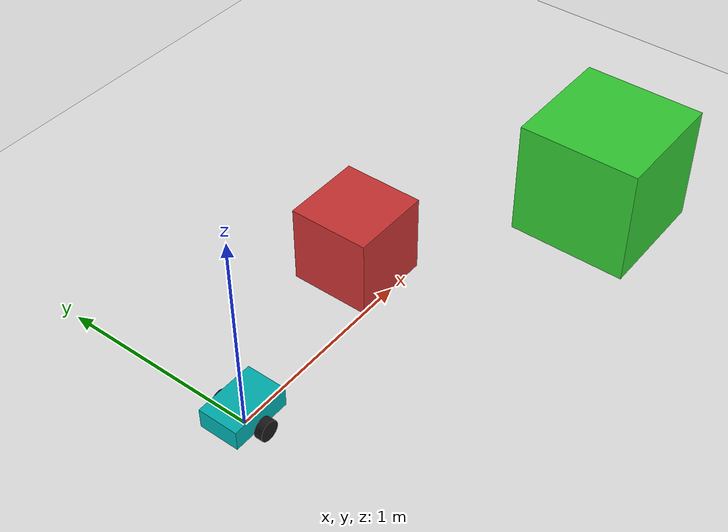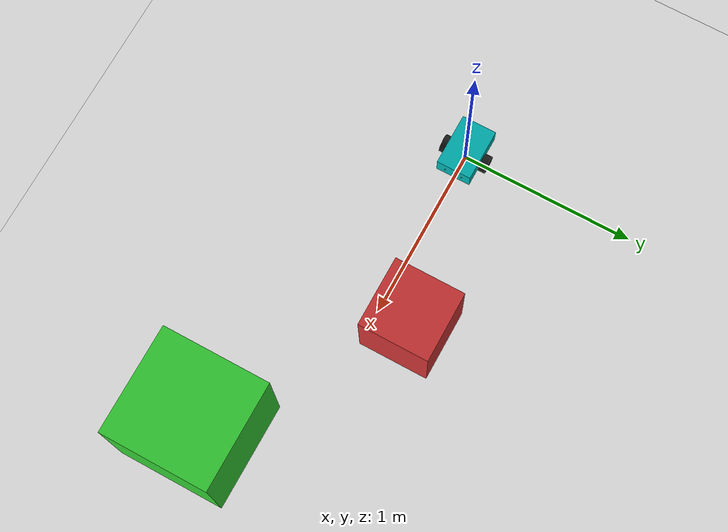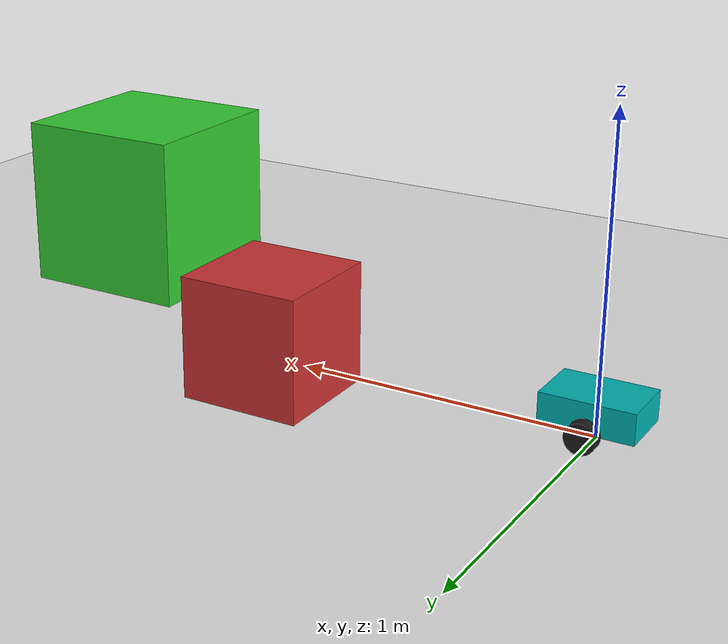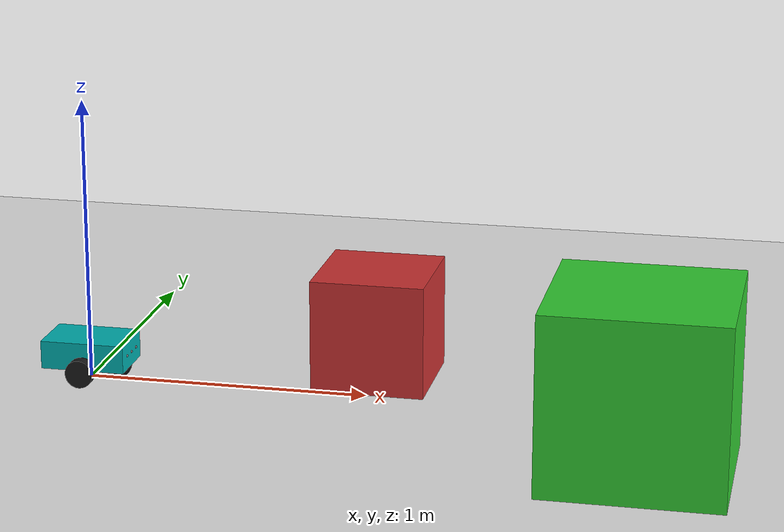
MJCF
<mujoco model="reactive_bot">
    <option timestep="0.01" gravity="0 0 -9.81"/>

    <worldbody>
        <light directional="true" diffuse=".8 .8 .8" specular=".2 .2 .2" pos="0 0 5" dir="0 0 -1"/>
        <geom name="ground" type="plane" size="10 10 0.1" rgba=".9 .9 .9 1"/>

        <body name="chassis" pos="0 0 0.1">
            <freejoint/>
            <geom name="chassis_geom" type="box" size=".15 .1 .05" rgba="0 .7 .7 1" mass="2.0"/>

            <body name="left_wheel" pos="0 0.12 -0.05" quat="0.707 0.707 0 0">
                <joint name="left_joint" type="hinge" axis="0 0 1"/>
                <geom type="cylinder" size=".05 .02" rgba=".1 .1 .1 1"/>
            </body>

            <body name="right_wheel" pos="0 -0.12 -0.05" quat="0.707 0.707 0 0">
                <joint name="right_joint" type="hinge" axis="0 0 1"/>
                <geom type="cylinder" size=".05 .02" rgba=".1 .1 .1 1"/>
            </body>

            <body name="caster" pos="0.1 0 -0.05">
                <geom type="sphere" size=".049" rgba=".1 .1 .1 1" friction="0.01"/>
            </body>

            <site name="sensor_center" pos="0.15 0 0" quat="0.707 0 0.707 0"/>
            <site name="sensor_left" pos="0.15 0.05 0" quat="0.653 0.271 0.653 0.271"/>
            <site name="sensor_right" pos="0.15 -0.05 0" quat="0.653 -0.271 0.653 -0.271"/>
        </body>

        <geom name="box1" type="box" size=".2 .2 .2" pos="1 0.2 0.2" rgba=".8 .2 .2 1"/>
        <geom name="box2" type="box" size=".3 .3 .3" pos="2 -0.5 0.3" rgba=".2 .8 .2 1"/>
    </worldbody>

    <sensor>
        <rangefinder name="rf_center" site="sensor_center"/>
        <rangefinder name="rf_left" site="sensor_left"/>
        <rangefinder name="rf_right" site="sensor_right"/>
    </sensor>

    <actuator>
        <velocity name="left_motor" joint="left_joint" kv="10"/>
        <velocity name="right_motor" joint="right_joint" kv="10"/>
    </actuator>
</mujoco>
